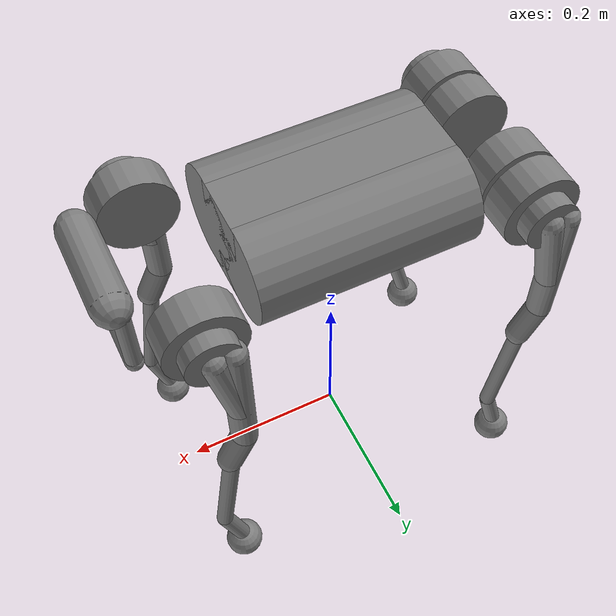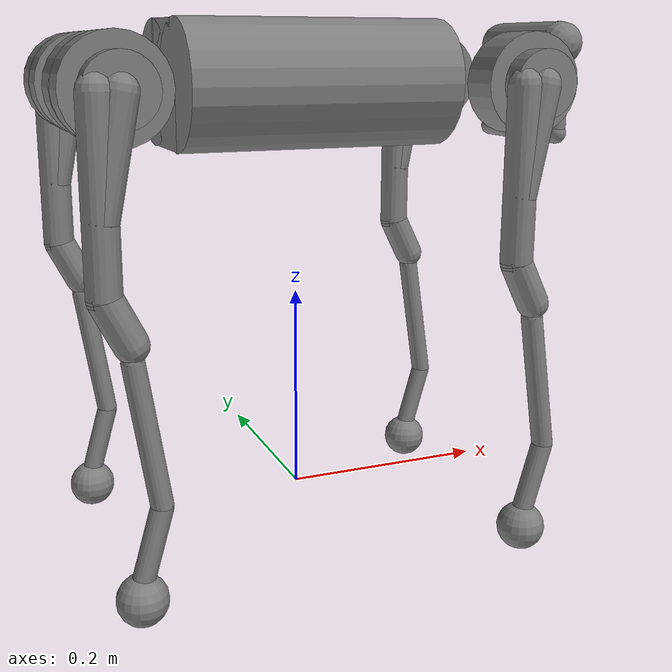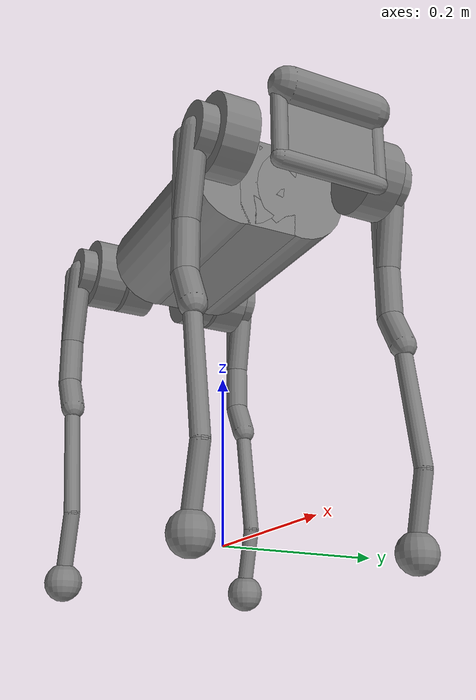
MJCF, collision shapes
<mujoco model="go1">
  <compiler angle="radian" meshdir="assets" autolimits="true"/>

  <option cone="elliptic" impratio="100"/>

  <default>
    <default class="go1">
      <geom friction="0.6" margin="0.001" condim="1"/>
      <joint axis="0 1 0" damping="2" armature="0.01" frictionloss="0.2"/>
      <position kp="100" forcerange="-23.7 23.7"/>
      <default class="abduction">
        <joint axis="1 0 0" damping="1" range="-0.863 0.863"/>
        <position ctrlrange="-0.863 0.863"/>
      </default>
      <default class="hip">
        <joint range="-0.686 4.501"/>
        <position ctrlrange="-0.686 4.501"/>
      </default>
      <default class="knee">
        <joint range="-2.818 -0.888"/>
        <position forcerange="-35.55 35.55" ctrlrange="-2.818 -0.888"/>
      </default>
      <default class="visual">
        <geom type="mesh" contype="0" conaffinity="0" group="2" material="dark"/>
      </default>
      <default class="collision">
        <geom group="3" type="capsule"/>
        <default class="hip_left1">
          <geom size="0.046 0.02" pos="0 0.045 0" quat="1 1 0 0" type="cylinder"/>
        </default>
        <default class="hip_left2">
          <geom size="0.031 0.02" pos="0 0.065 0" quat="1 1 0 0" type="cylinder"/>
        </default>
        <default class="hip_left3">
          <geom size="0.046 0.02" quat="1 1 0 0" type="cylinder"/>
        </default>
        <default class="hip_right1">
          <geom size="0.046 0.02" pos="0 -0.045 0" quat="1 1 0 0" type="cylinder"/>
        </default>
        <default class="hip_right2">
          <geom size="0.031 0.02" pos="0 -0.065 0" quat="1 1 0 0" type="cylinder"/>
        </default>
        <default class="hip_right3">
          <geom size="0.046 0.02" quat="1 1 0 0" type="cylinder"/>
        </default>
        <default class="thigh1">
          <geom size="0.015" fromto="-0.02 0 0 -0.02 0 -0.16"/>
        </default>
        <default class="thigh2">
          <geom size="0.015" fromto="0 0 0 -0.02 0 -0.1"/>
        </default>
        <default class="thigh3">
          <geom size="0.015" fromto="-0.02 0 -0.16 0 0 -0.2"/>
        </default>
        <default class="calf1">
          <geom size="0.01" fromto="0 0 0 0.02 0 -0.13"/>
        </default>
        <default class="calf2">
          <geom size="0.01" fromto="0.02 0 -0.13 0 0 -0.2"/>
        </default>
        <default class="foot">
          <geom type="sphere" size="0.023" pos="0 0 -0.213" priority="1" solimp="0.015 1 0.031" condim="6"
            friction="0.8 0.02 0.01"/>
        </default>
      </default>
    </default>
  </default>

  <asset>
    <material name="dark" rgba="0.1 0.1 0.1 1"/>
    <mesh class="go1" file="trunk.stl"/>
    <mesh class="go1" file="hip.stl"/>
    <mesh class="go1" file="thigh_mirror.stl"/>
    <mesh class="go1" file="calf.stl"/>
    <mesh class="go1" file="thigh.stl"/>
  </asset>

  <worldbody>
    <light name="spotlight" mode="targetbodycom" target="robot" pos="0 -1 2"/>
    <body name="robot" pos="0 0 0.40" childclass="go1">
      <camera name="tracking" mode="trackcom" pos="0 -1 0.8" xyaxes="1 0 0 0 1 1"/>
      <site name="head" pos="0.3 0 0" rgba="1 0 0 1" size="0.02" group="5"/>
      <inertial pos="0.0223 0.002 -0.0005" quat="-0.00342088 0.705204 0.000106698 0.708996" mass="5.204"
        diaginertia="0.0716565 0.0630105 0.0168101"/>
      <joint armature="0" axis="1 0 0" damping="30" limited="false" name="rootx" pos="0 0 0" stiffness="0" type="slide"/>
      <joint armature="0" axis="0 0 1" damping="0.1" limited="false" name="rootz" pos="0 0 0" stiffness="0" type="hinge"/>
      <joint armature="0" axis="0 1 0" damping="30" limited="false" name="rooty" pos="0 0 0" stiffness="0" type="slide"/>

      <geom class="visual" mesh="trunk"/>
      <geom class="collision" size="0.125 0.04 0.057" type="box"/>
      <geom class="collision" quat="1 0 1 0" pos="0 -0.04 0" size="0.058 0.125" type="cylinder"/>
      <geom class="collision" quat="1 0 1 0" pos="0 +0.04 0" size="0.058 0.125" type="cylinder"/>
      <geom class="collision" pos="0.25 0 0" size="0.005 0.06 0.05" type="box"/>
      <geom class="collision" pos="0.25 0.06 -0.01" size="0.009 0.035"/>
      <geom class="collision" pos="0.25 -0.06 -0.01" size="0.009 0.035"/>
      <geom class="collision" pos="0.25 0 -0.05" size="0.01 0.06" quat="1 1 0 0"/>
      <geom class="collision" pos="0.255 0 0.0355" size="0.021 0.052" quat="1 1 0 0"/>
      <site name="imu" pos="0 0 0"/>
      <body name="FR_hip" pos="0.1881 -0.04675 0">
        <inertial pos="-0.0049166 0.00762615 -8.865e-05" quat="0.507341 0.514169 0.495027 0.482891" mass="0.68"
          diaginertia="0.000734064 0.000468438 0.000398719"/>
        <joint class="abduction" name="FR_hip_joint"/>
        <geom class="visual" mesh="hip" quat="1 0 0 0"/>
        <geom class="hip_right1"/>
        <geom class="hip_right2"/>
        <body name="FR_thigh" pos="0 -0.08 0">
          <inertial pos="-0.00304722 0.019315 -0.0305004" quat="0.65243 -0.0272313 0.0775126 0.753383" mass="1.009"
            diaginertia="0.00478717 0.00460903 0.000709268"/>
          <joint class="hip" name="FR_thigh_joint"/>
          <geom class="visual" mesh="thigh_mirror"/>
          <geom class="thigh1"/>
          <geom class="thigh2"/>
          <geom class="thigh3"/>
          <body name="FR_calf" pos="0 0 -0.213">
            <inertial pos="0.00429862 0.000976676 -0.146197" quat="0.691246 0.00357467 0.00511118 0.722592"
              mass="0.195862" diaginertia="0.00149767 0.00148468 3.58427e-05"/>
            <joint class="knee" name="FR_calf_joint"/>
            <geom class="visual" mesh="calf"/>
            <geom class="calf1"/>
            <geom class="calf2"/>
            <geom name="FR" class="foot"/>
            <site name="FR" pos="0 0 -0.213" type="sphere" size="0.023" group="5"/>
          </body>
        </body>
      </body>
      <body name="FL_hip" pos="0.1881 0.04675 0">
        <inertial pos="-0.0049166 -0.00762615 -8.865e-05" quat="0.482891 0.495027 0.514169 0.507341" mass="0.68"
          diaginertia="0.000734064 0.000468438 0.000398719"/>
        <joint class="abduction" name="FL_hip_joint"/>
        <geom class="visual" mesh="hip"/>
        <geom class="hip_left1"/>
        <geom class="hip_left2"/>
        <body name="FL_thigh" pos="0 0.08 0">
          <inertial pos="-0.00304722 -0.019315 -0.0305004" quat="0.753383 0.0775126 -0.0272313 0.65243" mass="1.009"
            diaginertia="0.00478717 0.00460903 0.000709268"/>
          <joint class="hip" name="FL_thigh_joint"/>
          <geom class="visual" mesh="thigh"/>
          <geom class="thigh1"/>
          <geom class="thigh2"/>
          <geom class="thigh3"/>
          <body name="FL_calf" pos="0 0 -0.213">
            <inertial pos="0.00429862 0.000976676 -0.146197" quat="0.691246 0.00357467 0.00511118 0.722592"
              mass="0.195862" diaginertia="0.00149767 0.00148468 3.58427e-05"/>
            <joint class="knee" name="FL_calf_joint"/>
            <geom class="visual" mesh="calf"/>
            <geom class="calf1"/>
            <geom class="calf2"/>
            <geom name="FL" class="foot"/>
            <site name="FL" pos="0 0 -0.213" type="sphere" size="0.023" group="5"/>
          </body>
        </body>
      </body>
      <body name="RR_hip" pos="-0.1881 -0.04675 0">
        <inertial pos="0.0049166 0.00762615 -8.865e-05" quat="0.495027 0.482891 0.507341 0.514169" mass="0.68"
          diaginertia="0.000734064 0.000468438 0.000398719"/>
        <joint class="abduction" name="RR_hip_joint"/>
        <geom class="visual" quat="0 0 0 -1" mesh="hip"/>
        <geom class="hip_right1"/>
        <geom class="hip_right2"/>
        <geom class="hip_right3"/>
        <body name="RR_thigh" pos="0 -0.08 0">
          <inertial pos="-0.00304722 0.019315 -0.0305004" quat="0.65243 -0.0272313 0.0775126 0.753383" mass="1.009"
            diaginertia="0.00478717 0.00460903 0.000709268"/>
          <joint class="hip" name="RR_thigh_joint"/>
          <geom class="visual" mesh="thigh_mirror"/>
          <geom class="thigh1"/>
          <geom class="thigh2"/>
          <geom class="thigh3"/>
          <body name="RR_calf" pos="0 0 -0.213">
            <inertial pos="0.00429862 0.000976676 -0.146197" quat="0.691246 0.00357467 0.00511118 0.722592"
              mass="0.195862" diaginertia="0.00149767 0.00148468 3.58427e-05"/>
            <joint class="knee" name="RR_calf_joint"/>
            <geom class="visual" mesh="calf"/>
            <geom class="calf1"/>
            <geom class="calf2"/>
            <geom name="RR" class="foot"/>
            <site name="RR" pos="0 0 -0.213" type="sphere" size="0.023" group="5"/>
          </body>
        </body>
      </body>
      <body name="RL_hip" pos="-0.1881 0.04675 0">
        <inertial pos="0.0049166 -0.00762615 -8.865e-05" quat="0.514169 0.507341 0.482891 0.495027" mass="0.68"
          diaginertia="0.000734064 0.000468438 0.000398719"/>
        <joint class="abduction" name="RL_hip_joint"/>
        <geom class="visual" quat="0 0 1 0" mesh="hip"/>
        <geom class="hip_left1"/>
        <geom class="hip_left2"/>
        <geom class="hip_left3"/>
        <body name="RL_thigh" pos="0 0.08 0">
          <inertial pos="-0.00304722 -0.019315 -0.0305004" quat="0.753383 0.0775126 -0.0272313 0.65243" mass="1.009"
            diaginertia="0.00478717 0.00460903 0.000709268"/>
          <joint class="hip" name="RL_thigh_joint"/>
          <geom class="visual" mesh="thigh"/>
          <geom class="thigh1"/>
          <geom class="thigh2"/>
          <geom class="thigh3"/>
          <body name="RL_calf" pos="0 0 -0.213">
            <inertial pos="0.00429862 0.000976676 -0.146197" quat="0.691246 0.00357467 0.00511118 0.722592"
              mass="0.195862" diaginertia="0.00149767 0.00148468 3.58427e-05"/>
            <joint class="knee" name="RL_calf_joint"/>
            <geom class="visual" mesh="calf"/>
            <geom class="calf1"/>
            <geom class="calf2"/>
            <geom name="RL" class="foot"/>
            <site name="RL" pos="0 0 -0.213" type="sphere" size="0.023" group="5"/>
          </body>
        </body>
      </body>
    </body>
  </worldbody>

  <sensor>
        <touch site="FR" name="touch_FR"/>
        <touch site="FL" name="touch_FL"/>
        <touch site="RR" name="touch_RR"/>
        <touch site="RL" name="touch_RL"/>

        <jointpos joint="FR_hip_joint" name="jointpos_FR_hip_joint"/>
        <jointpos joint="FL_hip_joint" name="jointpos_FL_hip_joint"/>
        <jointpos joint="RR_hip_joint" name="jointpos_RR_hip_joint"/>
        <jointpos joint="RL_hip_joint" name="jointpos_RL_hip_joint"/>

        <jointpos joint="FR_thigh_joint" name="jointpos_FR_thigh_joint"/>
        <jointpos joint="FL_thigh_joint" name="jointpos_FL_thigh_joint"/>
        <jointpos joint="RR_thigh_joint" name="jointpos_RR_thigh_joint"/>
        <jointpos joint="RL_thigh_joint" name="jointpos_RL_thigh_joint"/>

        <jointpos joint="FR_calf_joint" name="jointpos_FR_calf_joint"/>
        <jointpos joint="FL_calf_joint" name="jointpos_FL_calf_joint"/>
        <jointpos joint="RR_calf_joint" name="jointpos_RR_calf_joint"/>
        <jointpos joint="RL_calf_joint" name="jointpos_RL_calf_joint"/>

        <jointvel joint="FR_hip_joint" name="jointvel_FR_hip_joint"/>
        <jointvel joint="FL_hip_joint" name="jointvel_FL_hip_joint"/>
        <jointvel joint="RR_hip_joint" name="jointvel_RR_hip_joint"/>
        <jointvel joint="RL_hip_joint" name="jointvel_RL_hip_joint"/>

        <jointvel joint="FR_thigh_joint" name="jointvel_FR_thigh_joint"/>
        <jointvel joint="FL_thigh_joint" name="jointvel_FL_thigh_joint"/>
        <jointvel joint="RR_thigh_joint" name="jointvel_RR_thigh_joint"/>
        <jointvel joint="RL_thigh_joint" name="jointvel_RL_thigh_joint"/>

        <jointvel joint="FR_calf_joint" name="jointvel_FR_calf_joint"/>
        <jointvel joint="FL_calf_joint" name="jointvel_FL_calf_joint"/>
        <jointvel joint="RR_calf_joint" name="jointvel_RR_calf_joint"/>
        <jointvel joint="RL_calf_joint" name="jointvel_RL_calf_joint"/>

        <!-- Used for observation -->
        <accelerometer site="head" name="accelerometer"/>
        <velocimeter site="head" name="velocimeter"/>
        <gyro site="head" name="gyro"/>
        <magnetometer site="head" name="magnetometer"/>

        <!-- Used for intrinsic constraints -->
        <subtreecom body="robot" name="subtreecom"/>
        <subtreelinvel body="robot" name="subtreelinvel"/>
        <subtreeangmom body="robot" name="subtreeangmom"/>
  </sensor>

  <actuator>
    <position class="abduction" name="FR_hip" joint="FR_hip_joint"/>
    <position class="hip" name="FR_thigh" joint="FR_thigh_joint"/>
    <position class="knee" name="FR_calf" joint="FR_calf_joint"/>
    <position class="abduction" name="FL_hip" joint="FL_hip_joint"/>
    <position class="hip" name="FL_thigh" joint="FL_thigh_joint"/>
    <position class="knee" name="FL_calf" joint="FL_calf_joint"/>
    <position class="abduction" name="RR_hip" joint="RR_hip_joint"/>
    <position class="hip" name="RR_thigh" joint="RR_thigh_joint"/>
    <position class="knee" name="RR_calf" joint="RR_calf_joint"/>
    <position class="abduction" name="RL_hip" joint="RL_hip_joint"/>
    <position class="hip" name="RL_thigh" joint="RL_thigh_joint"/>
    <position class="knee" name="RL_calf" joint="RL_calf_joint"/>
  </actuator>

</mujoco>
